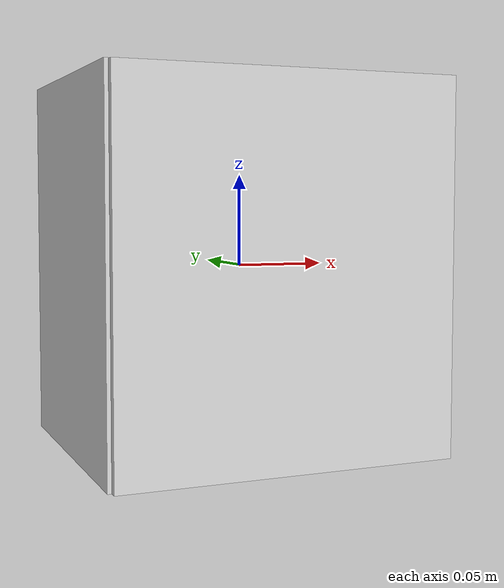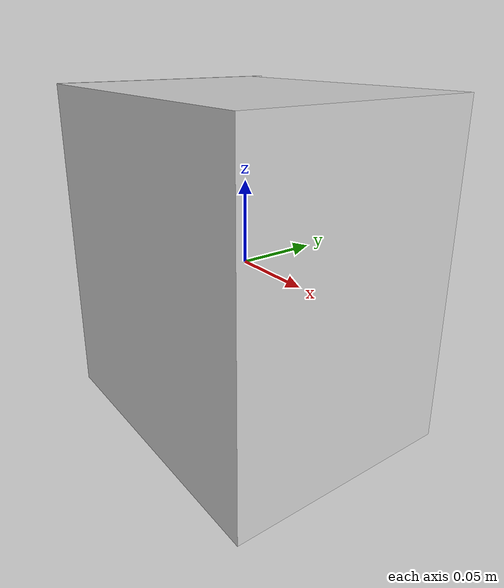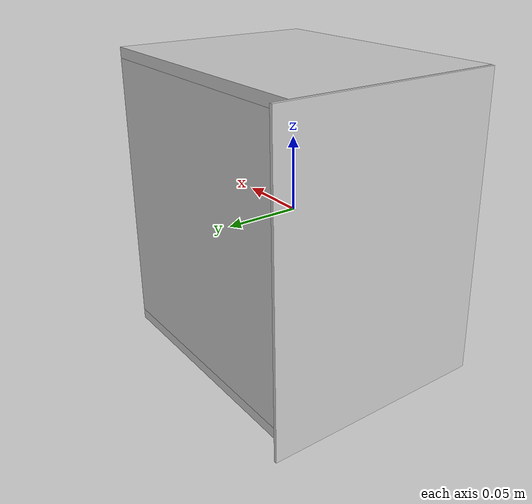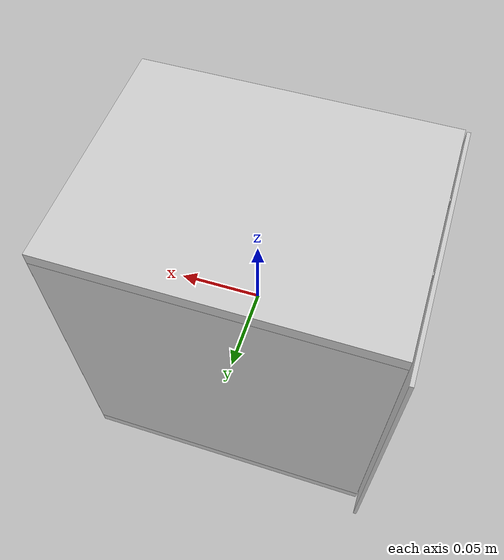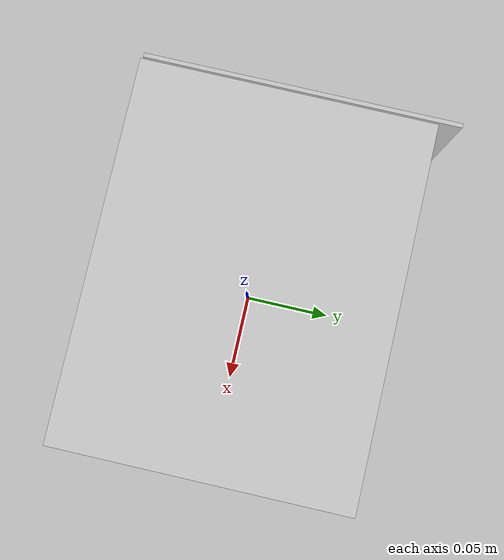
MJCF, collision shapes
<mujoco model="base_vis">
  <asset>
  <texture file="dark-wood.png" name="tex-base_vis" type="2d"/>
  <material name="base_vis" reflectance="0.5" texrepeat="1 1" texture="tex-base_vis" texuniform="false" />
  <mesh file="visual/base_vis_vis.msh" name="base_vis_vis" scale="0.05 0.05 0.05" /></asset>
  <worldbody>
    <body>
      <body name="object">
      <geom solimp="0.998 0.998 0.001" solref="0.001 1" density="100" friction="0.95 0.3 0.1" type="mesh" mesh="base_vis_vis" conaffinity="0" contype="0" group="1" material="base_vis" /><geom solimp="0.998 0.998 0.001" solref="0.001 1" density="100" friction="0.95 0.3 0.1" type="box" pos="-0.00083 -0.02512 -0.00000" quat="0.00000 -0.70711 0.70711 0.00000" size="0.00107 0.09310 0.09842" group="0" rgba="0.8 0.8 0.8 0" /><geom solimp="0.998 0.998 0.001" solref="0.001 1" density="100" friction="0.95 0.3 0.1" type="box" pos="-0.00083 0.02172 -0.00000" quat="0.00000 0.70711 0.70711 0.00000" size="0.00107 0.09310 0.09842" group="0" rgba="0.8 0.8 0.8 0" /><geom solimp="0.998 0.998 0.001" solref="0.001 1" density="100" friction="0.95 0.3 0.1" type="box" pos="-0.09461 0.00621 0.00041" quat="0.00000 0.00000 1.00000 0.00000" size="0.00104 0.07714 0.10110" group="0" rgba="0.8 0.8 0.8 0.3" /><geom solimp="0.998 0.998 0.001" solref="0.001 1" density="100" friction="0.95 0.3 0.1" type="box" pos="-0.00000 0.07014 -0.00000" quat="0.00000 0.70711 0.70711 0.00000" size="0.00206 0.09262 0.09428" group="0" rgba="0.8 0.8 0.8 0.3" /><geom solimp="0.998 0.998 0.001" solref="0.001 1" density="100" friction="0.95 0.3 0.1" type="box" pos="-0.00000 0.07007 -0.00000" quat="0.00000 0.70711 0.70711 0.00000" size="0.00194 0.09262 0.09830" group="0" rgba="0.8 0.8 0.8 0" /><geom solimp="0.998 0.998 0.001" solref="0.001 1" density="100" friction="0.95 0.3 0.1" type="box" pos="0.00000 -0.00001 0.00000" quat="0.00000 0.70711 0.70711 0.00000" size="0.07215 0.09270 0.10152" group="0" rgba="0.8 0.8 0.8 0" /></body>
      <site rgba="0 0 0 0" size="0.005" pos="0 0 -0.06" name="bottom_site" />
      <site rgba="0 0 0 0" size="0.005" pos="0 0 0.04" name="top_site" />
      <site rgba="0 0 0 0" size="0.005" pos="0.025 0.025 0" name="horizontal_radius_site" />
    </body>
  </worldbody>
</mujoco>
